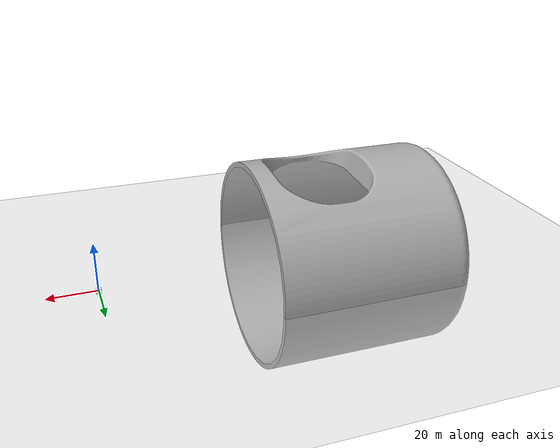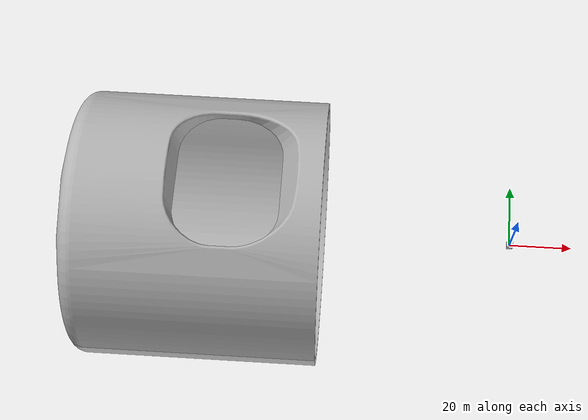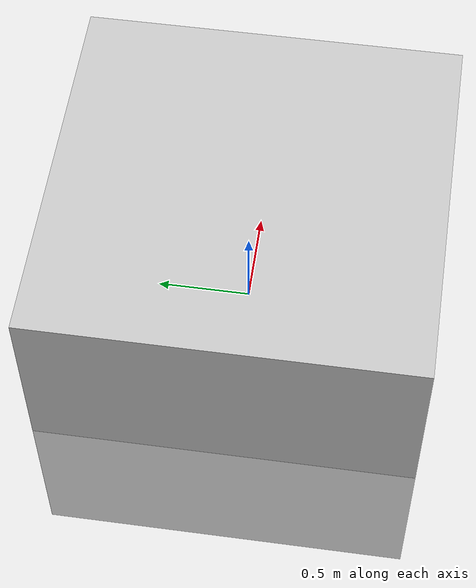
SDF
<?xml version="1.0" ?>
<sdf version="1.5">
  <world name="default">
    <!-- A global light source -->
    <include>
      <uri>model://sun</uri>
    </include>
    <!-- A ground plane -->
    <include>
      <uri>model://ground_plane</uri>
    </include>

    <!-- A testing model that includes the Velodyne sensor model -->
    <model name="my_velodyne">
      <include>
        <uri>model://velodyne_hdl32</uri>
      </include>

      <!-- Attach the plugin to this model -->
      <plugin name="velodyne_control" filename="./libvelodyne_plugin.so">
	<velocity>5</velocity>
      </plugin>
    </model>

  </world>
</sdf>

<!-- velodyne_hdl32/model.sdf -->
<sdf version="1.5">
  <model name="velodyne">
    <link name="base">
      <pose>0 0 0.029335 0 0 0</pose>
      <inertial>
        <mass>1.2</mass>
        <inertia>
          <ixx>0.001087473</ixx>
          <iyy>0.001087473</iyy>
          <izz>0.001092437</izz>
          <ixy>0</ixy>
          <ixz>0</ixz>
          <iyz>0</iyz>
        </inertia>
      </inertial>
      <collision name="base_collision">
        <geometry>
          <cylinder>
            <radius>.04267</radius>
            <length>.05867</length>
          </cylinder>
        </geometry>
      </collision>
      <visual name="base_visual">
        <pose>0 0 -0.029335 0 0 0</pose>
        <geometry>
          <mesh>
            <uri>model://../model_source/models/velodyne_hdl32/meshes/velodyne_base.dae</uri>
          </mesh>
        </geometry>
      </visual>
    </link>

    <link name="top">
      <pose>0 0 0.095455 0 0 0</pose>
      <inertial>
        <mass>0.1</mass>
        <inertia>
          <ixx>0.000090623</ixx>
          <iyy>0.000090623</iyy>
          <izz>0.000091036</izz>
          <ixy>0</ixy>
          <ixz>0</ixz>
          <iyz>0</iyz>
        </inertia>
      </inertial>
      <collision name="top_collision">
        <geometry>
          <cylinder>
            <radius>0.04267</radius>
            <length>0.07357</length>
          </cylinder>
        </geometry>
      </collision>
      <visual name="top_visual">
        <pose>0 0 -0.0376785 0 0 1.5707</pose>
        <geometry>
          <mesh>
            <uri>model://../model_source/models/velodyne_hdl32/meshes/velodyne_top.dae</uri>
          </mesh>
        </geometry>
      </visual>

      <sensor type="ray" name="sensor">
        <pose>0 0 -0.004645 1.5707 0 0</pose>
        <visualize>true</visualize>
        <update_rate>30</update_rate>
        <ray>
          <noise>
            <type>gaussian</type>
            <mean>0.0</mean>
            <stddev>0.1</stddev>
          </noise>

          <scan>
            <horizontal>
              <samples>32</samples>
              <resolution>1</resolution>
              <min_angle>-0.53529248</min_angle>
              <max_angle>0.18622663</max_angle>
            </horizontal>
          </scan>

          <range>
            <min>0.1</min>
            <max>70</max>
            <resolution>0.02</resolution>
          </range>
        </ray>
      </sensor>
    </link>

    <joint type="revolute" name="joint">
      <pose>0 0 -0.036785 0 0 0</pose>
      <parent>base</parent>
      <child>top</child>
      <axis>
        <xyz>0 0 1</xyz>
        <limit>
          <lower>-10000000000000000</lower>
          <upper>10000000000000000</upper>
        </limit>
      </axis>
    </joint>

  </model>
</sdf>
